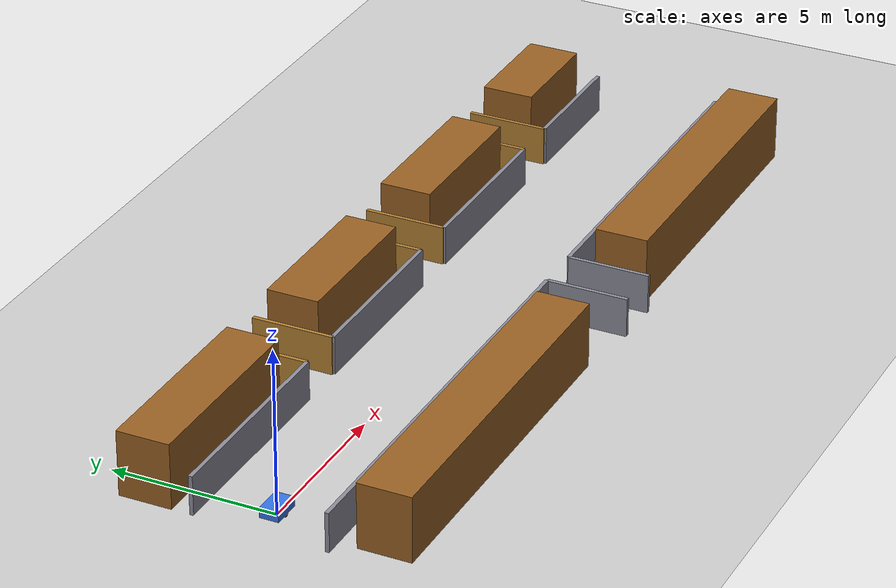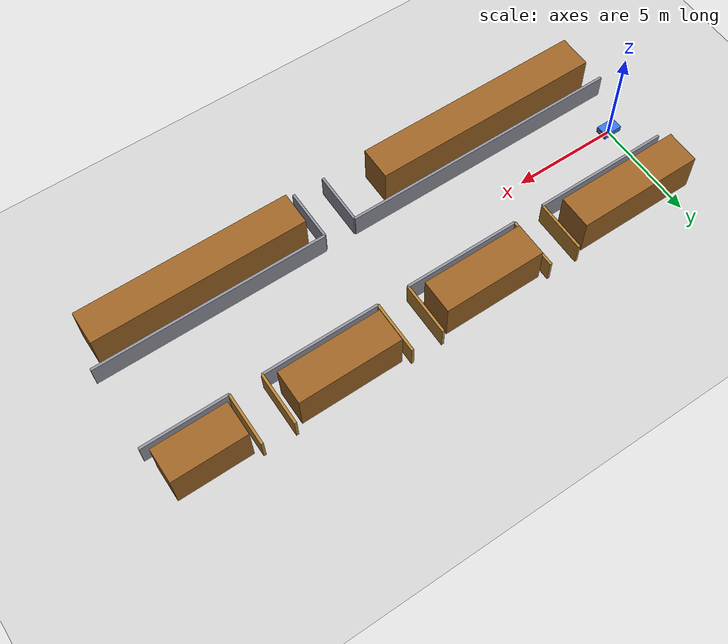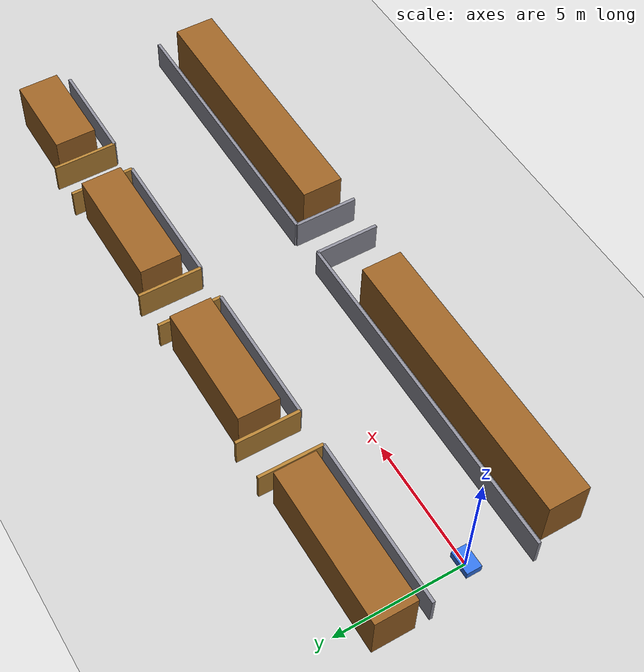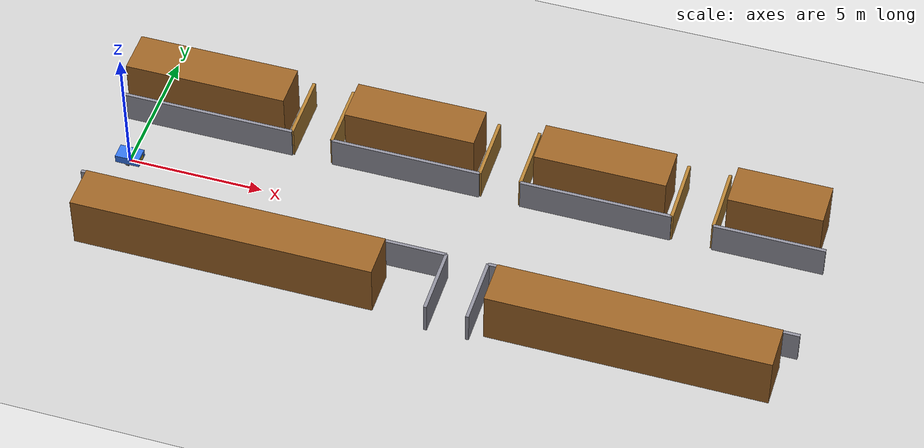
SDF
<sdf version="1.6">
 <world name="industrial_warehouse">
  <include><uri>model://sun</uri></include>
  <include><uri>model://ground_plane</uri></include>
  <plugin name="gazebo_ros_state" filename="libgazebo_ros_state.so">
   <ros><namespace>/gazebo</namespace></ros>
   <update_rate>20.0</update_rate>
  </plugin>
  <model name="bot_west">
   <static>true</static>
   <pose>5.750 -2.000 0.6 0 0 0</pose>
   <link name="l">
    <collision name="c"><geometry><box><size>13.500 0.120 1.2</size></box></geometry></collision>
    <visual name="v">
     <geometry><box><size>13.500 0.120 1.2</size></box></geometry>
     <material><ambient>0.55 0.55 0.6 1</ambient></material>
    </visual>
   </link>
  </model>
  <model name="bot_east">
   <static>true</static>
   <pose>19.500 -2.000 0.6 0 0 0</pose>
   <link name="l">
    <collision name="c"><geometry><box><size>11.000 0.120 1.2</size></box></geometry></collision>
    <visual name="v">
     <geometry><box><size>11.000 0.120 1.2</size></box></geometry>
     <material><ambient>0.55 0.55 0.6 1</ambient></material>
    </visual>
   </link>
  </model>
  <model name="aisle_S_w">
   <static>true</static>
   <pose>12.500 -3.250 0.6 0 0 0</pose>
   <link name="l">
    <collision name="c"><geometry><box><size>0.120 2.500 1.2</size></box></geometry></collision>
    <visual name="v">
     <geometry><box><size>0.120 2.500 1.2</size></box></geometry>
     <material><ambient>0.55 0.55 0.6 1</ambient></material>
    </visual>
   </link>
  </model>
  <model name="aisle_S_e">
   <static>true</static>
   <pose>14.000 -3.250 0.6 0 0 0</pose>
   <link name="l">
    <collision name="c"><geometry><box><size>0.120 2.500 1.2</size></box></geometry></collision>
    <visual name="v">
     <geometry><box><size>0.120 2.500 1.2</size></box></geometry>
     <material><ambient>0.55 0.55 0.6 1</ambient></material>
    </visual>
   </link>
  </model>
  <model name="top_1">
   <static>true</static>
   <pose>2.250 2.000 0.6 0 0 0</pose>
   <link name="l">
    <collision name="c"><geometry><box><size>6.500 0.120 1.2</size></box></geometry></collision>
    <visual name="v">
     <geometry><box><size>6.500 0.120 1.2</size></box></geometry>
     <material><ambient>0.55 0.55 0.6 1</ambient></material>
    </visual>
   </link>
  </model>
  <model name="top_2">
   <static>true</static>
   <pose>9.750 2.000 0.6 0 0 0</pose>
   <link name="l">
    <collision name="c"><geometry><box><size>5.500 0.120 1.2</size></box></geometry></collision>
    <visual name="v">
     <geometry><box><size>5.500 0.120 1.2</size></box></geometry>
     <material><ambient>0.55 0.55 0.6 1</ambient></material>
    </visual>
   </link>
  </model>
  <model name="top_3">
   <static>true</static>
   <pose>16.750 2.000 0.6 0 0 0</pose>
   <link name="l">
    <collision name="c"><geometry><box><size>5.500 0.120 1.2</size></box></geometry></collision>
    <visual name="v">
     <geometry><box><size>5.500 0.120 1.2</size></box></geometry>
     <material><ambient>0.55 0.55 0.6 1</ambient></material>
    </visual>
   </link>
  </model>
  <model name="top_4">
   <static>true</static>
   <pose>23.000 2.000 0.6 0 0 0</pose>
   <link name="l">
    <collision name="c"><geometry><box><size>4.000 0.120 1.2</size></box></geometry></collision>
    <visual name="v">
     <geometry><box><size>4.000 0.120 1.2</size></box></geometry>
     <material><ambient>0.55 0.55 0.6 1</ambient></material>
    </visual>
   </link>
  </model>
  <model name="aisleA_w">
   <static>true</static>
   <pose>5.500 3.250 0.6 0 0 0</pose>
   <link name="l">
    <collision name="c"><geometry><box><size>0.120 2.500 1.2</size></box></geometry></collision>
    <visual name="v">
     <geometry><box><size>0.120 2.500 1.2</size></box></geometry>
     <material><ambient>0.70 0.50 0.20 1</ambient></material>
    </visual>
   </link>
  </model>
  <model name="aisleA_e">
   <static>true</static>
   <pose>7.000 3.250 0.6 0 0 0</pose>
   <link name="l">
    <collision name="c"><geometry><box><size>0.120 2.500 1.2</size></box></geometry></collision>
    <visual name="v">
     <geometry><box><size>0.120 2.500 1.2</size></box></geometry>
     <material><ambient>0.70 0.50 0.20 1</ambient></material>
    </visual>
   </link>
  </model>
  <model name="aisleB_w">
   <static>true</static>
   <pose>12.500 3.250 0.6 0 0 0</pose>
   <link name="l">
    <collision name="c"><geometry><box><size>0.120 2.500 1.2</size></box></geometry></collision>
    <visual name="v">
     <geometry><box><size>0.120 2.500 1.2</size></box></geometry>
     <material><ambient>0.70 0.50 0.20 1</ambient></material>
    </visual>
   </link>
  </model>
  <model name="aisleB_e">
   <static>true</static>
   <pose>14.000 3.250 0.6 0 0 0</pose>
   <link name="l">
    <collision name="c"><geometry><box><size>0.120 2.500 1.2</size></box></geometry></collision>
    <visual name="v">
     <geometry><box><size>0.120 2.500 1.2</size></box></geometry>
     <material><ambient>0.70 0.50 0.20 1</ambient></material>
    </visual>
   </link>
  </model>
  <model name="aisleC_w">
   <static>true</static>
   <pose>19.500 3.250 0.6 0 0 0</pose>
   <link name="l">
    <collision name="c"><geometry><box><size>0.120 2.500 1.2</size></box></geometry></collision>
    <visual name="v">
     <geometry><box><size>0.120 2.500 1.2</size></box></geometry>
     <material><ambient>0.70 0.50 0.20 1</ambient></material>
    </visual>
   </link>
  </model>
  <model name="aisleC_e">
   <static>true</static>
   <pose>21.000 3.250 0.6 0 0 0</pose>
   <link name="l">
    <collision name="c"><geometry><box><size>0.120 2.500 1.2</size></box></geometry></collision>
    <visual name="v">
     <geometry><box><size>0.120 2.500 1.2</size></box></geometry>
     <material><ambient>0.70 0.50 0.20 1</ambient></material>
    </visual>
   </link>
  </model>
  <model name="rack_n1">
   <static>true</static>
   <pose>2.00 3.40 1.0 0 0 0</pose>
   <link name="l">
    <visual name="v">
     <geometry><box><size>6.00 1.60 2.0</size></box></geometry>
     <material><ambient>0.45 0.28 0.10 1</ambient><diffuse>0.6 0.38 0.14 1</diffuse></material>
    </visual>
   </link>
  </model>
  <model name="rack_n2">
   <static>true</static>
   <pose>9.70 3.40 1.0 0 0 0</pose>
   <link name="l">
    <visual name="v">
     <geometry><box><size>4.80 1.60 2.0</size></box></geometry>
     <material><ambient>0.45 0.28 0.10 1</ambient><diffuse>0.6 0.38 0.14 1</diffuse></material>
    </visual>
   </link>
  </model>
  <model name="rack_n3">
   <static>true</static>
   <pose>16.70 3.40 1.0 0 0 0</pose>
   <link name="l">
    <visual name="v">
     <geometry><box><size>4.80 1.60 2.0</size></box></geometry>
     <material><ambient>0.45 0.28 0.10 1</ambient><diffuse>0.6 0.38 0.14 1</diffuse></material>
    </visual>
   </link>
  </model>
  <model name="rack_n4">
   <static>true</static>
   <pose>23.00 3.40 1.0 0 0 0</pose>
   <link name="l">
    <visual name="v">
     <geometry><box><size>3.40 1.60 2.0</size></box></geometry>
     <material><ambient>0.45 0.28 0.10 1</ambient><diffuse>0.6 0.38 0.14 1</diffuse></material>
    </visual>
   </link>
  </model>
  <model name="rack_s1">
   <static>true</static>
   <pose>5.00 -3.40 1.0 0 0 0</pose>
   <link name="l">
    <visual name="v">
     <geometry><box><size>11.00 1.60 2.0</size></box></geometry>
     <material><ambient>0.45 0.28 0.10 1</ambient><diffuse>0.6 0.38 0.14 1</diffuse></material>
    </visual>
   </link>
  </model>
  <model name="rack_s2">
   <static>true</static>
   <pose>19.50 -3.40 1.0 0 0 0</pose>
   <link name="l">
    <visual name="v">
     <geometry><box><size>10.00 1.60 2.0</size></box></geometry>
     <material><ambient>0.45 0.28 0.10 1</ambient><diffuse>0.6 0.38 0.14 1</diffuse></material>
    </visual>
   </link>
  </model>
  <model name="amr">
   <pose>0 0 0.1 0 0 0</pose>
   <link name="base_footprint">
    <inertial>
     <mass>60.0</mass>
     <inertia><ixx>3.0</ixx><iyy>6.0</iyy><izz>7.0</izz><ixy>0</ixy><ixz>0</ixz><iyz>0</iyz></inertia>
    </inertial>
    <collision name="body_c">
     <pose>0 0 0.14 0 0 0</pose>
     <geometry><box><size>0.9 0.58 0.3</size></box></geometry>
    </collision>
    <visual name="body_v">
     <pose>0 0 0.14 0 0 0</pose>
     <geometry><box><size>0.9 0.58 0.3</size></box></geometry>
     <material><ambient>0.15 0.35 0.75 1</ambient><diffuse>0.2 0.45 0.9 1</diffuse></material>
    </visual>
    <visual name="nose_v">
     <pose>0.42 0 0.14 0 0 0</pose>
     <geometry><box><size>0.08 0.3 0.12</size></box></geometry>
     <material><ambient>0.95 0.8 0.1 1</ambient></material>
    </visual>
    <collision name="caster_f">
     <pose>0.35 0 -0.045 0 0 0</pose>
     <geometry><sphere><radius>0.05</radius></sphere></geometry>
     <surface><friction><ode><mu>0</mu><mu2>0</mu2></ode></friction></surface>
    </collision>
    <collision name="caster_r">
     <pose>-0.35 0 -0.045 0 0 0</pose>
     <geometry><sphere><radius>0.05</radius></sphere></geometry>
     <surface><friction><ode><mu>0</mu><mu2>0</mu2></ode></friction></surface>
    </collision>
   </link>
   <link name="left_wheel">
    <pose>0 0.25 0 0 0 0</pose>
    <inertial>
     <mass>1.5</mass>
     <inertia><ixx>0.005</ixx><iyy>0.008</iyy><izz>0.005</izz><ixy>0</ixy><ixz>0</ixz><iyz>0</iyz></inertia>
    </inertial>
    <collision name="c">
     <pose>0 0 0 -1.5708 0 0</pose>
     <geometry><cylinder><radius>0.1</radius><length>0.05</length></cylinder></geometry>
     <surface><friction><ode><mu>1.0</mu><mu2>1.0</mu2></ode></friction></surface>
    </collision>
    <visual name="v">
     <pose>0 0 0 -1.5708 0 0</pose>
     <geometry><cylinder><radius>0.1</radius><length>0.05</length></cylinder></geometry>
     <material><ambient>0.1 0.1 0.1 1</ambient></material>
    </visual>
   </link>
   <link name="right_wheel">
    <pose>0 -0.25 0 0 0 0</pose>
    <inertial>
     <mass>1.5</mass>
     <inertia><ixx>0.005</ixx><iyy>0.008</iyy><izz>0.005</izz><ixy>0</ixy><ixz>0</ixz><iyz>0</iyz></inertia>
    </inertial>
    <collision name="c">
     <pose>0 0 0 -1.5708 0 0</pose>
     <geometry><cylinder><radius>0.1</radius><length>0.05</length></cylinder></geometry>
     <surface><friction><ode><mu>1.0</mu><mu2>1.0</mu2></ode></friction></surface>
    </collision>
    <visual name="v">
     <pose>0 0 0 -1.5708 0 0</pose>
     <geometry><cylinder><radius>0.1</radius><length>0.05</length></cylinder></geometry>
     <material><ambient>0.1 0.1 0.1 1</ambient></material>
    </visual>
   </link>
   <joint name="left_wheel_joint" type="revolute">
    <parent>base_footprint</parent>
    <child>left_wheel</child>
    <axis><xyz>0 1 0</xyz><limit><lower>-1e16</lower><upper>1e16</upper></limit></axis>
   </joint>
   <joint name="right_wheel_joint" type="revolute">
    <parent>base_footprint</parent>
    <child>right_wheel</child>
    <axis><xyz>0 1 0</xyz><limit><lower>-1e16</lower><upper>1e16</upper></limit></axis>
   </joint>
   <plugin name="diff_drive" filename="libgazebo_ros_diff_drive.so">
    <ros><namespace>/</namespace></ros>
    <update_rate>50</update_rate>
    <left_joint>left_wheel_joint</left_joint>
    <right_joint>right_wheel_joint</right_joint>
    <wheel_separation>0.5</wheel_separation>
    <wheel_diameter>0.2</wheel_diameter>
    <max_wheel_torque>200</max_wheel_torque>
    <max_wheel_acceleration>3.0</max_wheel_acceleration>
    <command_topic>cmd_vel</command_topic>
    <odometry_topic>odom</odometry_topic>
    <odometry_frame>odom</odometry_frame>
    <robot_base_frame>base_footprint</robot_base_frame>
    <publish_odom>true</publish_odom>
    <publish_odom_tf>true</publish_odom_tf>
    <publish_wheel_tf>true</publish_wheel_tf>
   </plugin>
  </model>
 </world>
</sdf>
